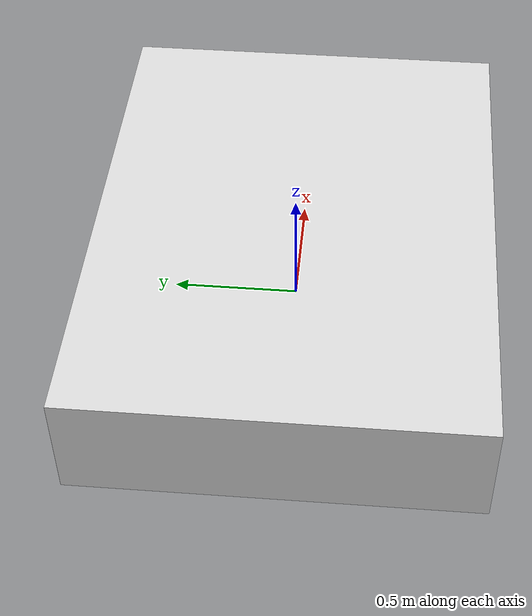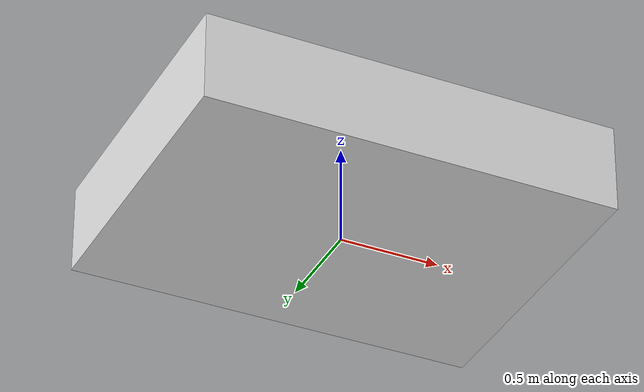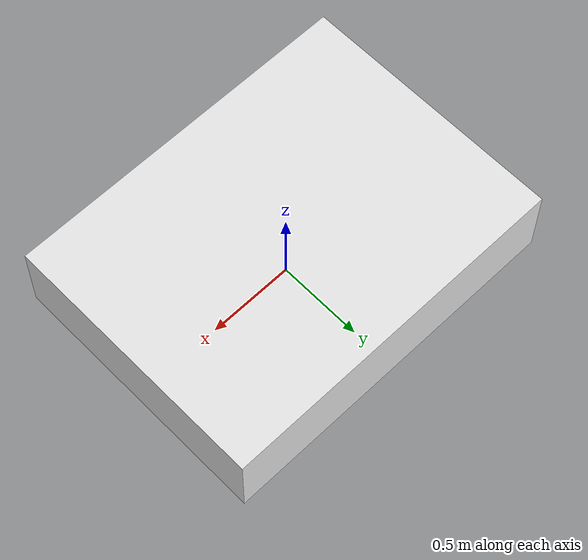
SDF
<?xml version="1.0"?>
<sdf version="1.6">
  <model name="rgo2015/bed">
    <link name="1_link">
      <collision name="1_col">
        <geometry>
          <box>
            <size>2.06 1.55 0.45</size>
          </box>
        </geometry>
      </collision>
      <visual name="1_vis">
        <geometry>
          <box>
            <size>2.06 1.55 0.45</size>
          </box>
        </geometry>
        <material>
          <ambient>0.9 0.9 0.9 1</ambient>
        </material>
      </visual>
      <pose>0.0 0.0 0.225 0 0 0</pose>
    </link>
    <static>true</static>
  </model>
</sdf>
